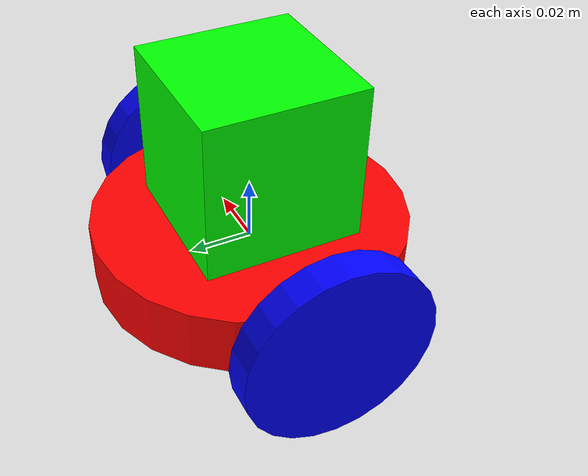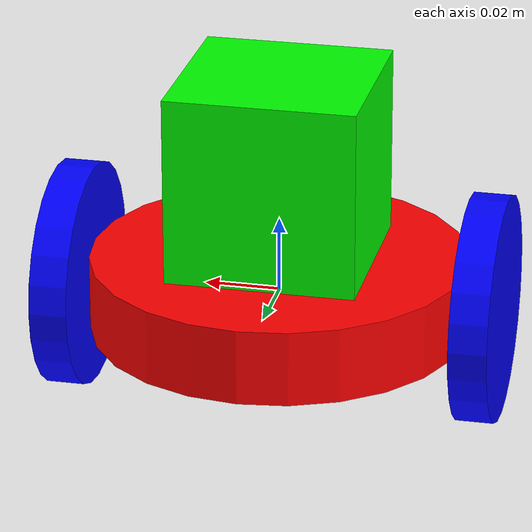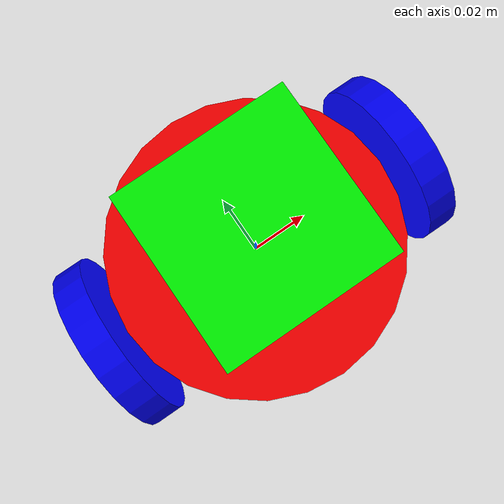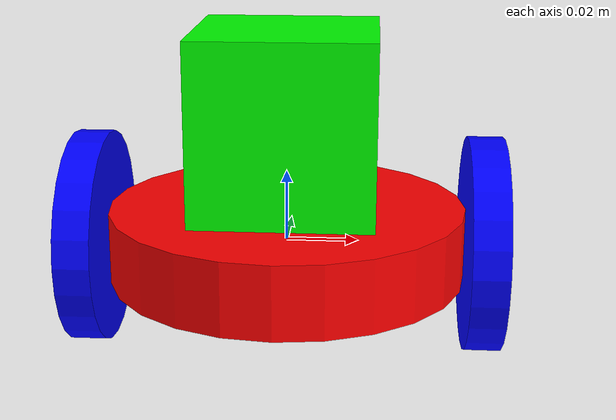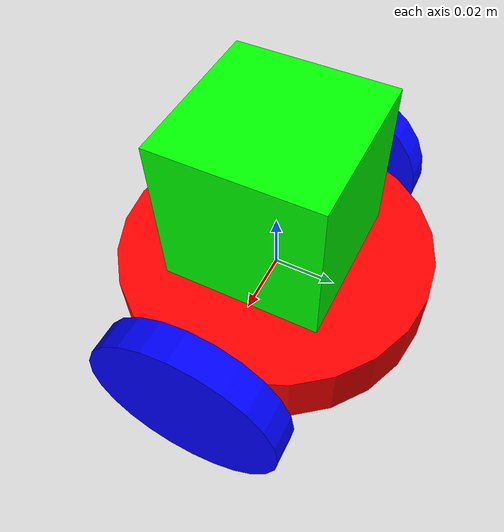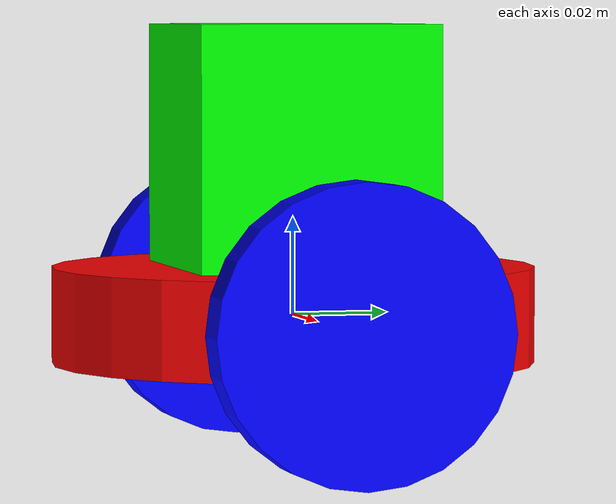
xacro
<?xml version="1.0" ?>

<robot name="mobile_robot" xmlns:xacro="http://ros.org/wiki/xacro">
    <!-- Link to the files that we'll use to build our robot  -->
    <xacro:include filename="$(find robot_support)/urdf/head.xacro" />
    <xacro:include filename="$(find robot_support)/urdf/wheel.xacro" />
    <xacro:include filename="$(find robot_support)/urdf/base.xacro" />

    <!-- Create the base of the robot -->
    <!-- Note: The name called after xacro (robot_base) is the name defined in line 3 of the part xacro file -->
    <xacro:robot_base prefix=""/>

    <!-- Create the head of the robot -->
    <xacro:robot_head prefix=""/>

    <!-- Create a left and right wheel -->
    <!-- To create wheels with different names, we will supply a prefix to the wheel argument -->
    <xacro:robot_wheel prefix="left"/>
    <xacro:robot_wheel prefix="right"/>

    <!-- Attach the created links using joints -->
    <!-- Attach head_link to base_link -->
    <joint name="head_joint" type="fixed">
        <origin xyz="0.0 0.0 0.035" rpy="0.0 0.0 0.0"/>
        <parent link="base_link"/>
        <child link="head_link"/>
    </joint>

    <!-- Attach wheels to base_link -->
    <joint name="left_wheel_joint" type="revolute">
        <axis xyz="0 0 1"/>
        <limit effort="100.0" lower="-3.14" upper="3.14" velocity="0.1"/>
        <origin xyz="0.055 0.0 0.0" rpy="0.0 1.5708 0.0"/>
        <parent link="base_link"/>
        <child link="left_wheel_link"/>
    </joint>

    <joint name="right_wheel_joint" type="revolute">
        <axis xyz="0 0 1"/>
        <limit effort="100.0" lower="-3.14" upper="3.14" velocity="0.1"/>
        <origin xyz="-0.055 0.0 0.0" rpy="0.0 1.5708 0.0"/>
        <parent link="base_link"/>
        <child link="right_wheel_link"/>
    </joint>

</robot>

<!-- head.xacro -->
<robot xmlns:xacro="http://ros.org/wiki/xacro">
<xacro:macro name="robot_head" params="prefix">

    <!-- Robot Head -->
    <link name="${prefix}head_link">
        <visual>
            <origin xyz="0 0 0" rpy="0 0 0" />
            <geometry>
                <box size="0.05 0.05 0.05"/>
            </geometry>
            <material name="green">
                <color rgba="0.0 1.0 0.0 1.0"/>
            </material>
        </visual>
        <collision>
            <origin xyz="0 0 0" rpy="0 0 0" />
            <geometry>
                <box size="0.05 0.05 0.05"/>
            </geometry>
        </collision>
    </link>

</xacro:macro>
</robot>

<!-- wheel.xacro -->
<robot xmlns:xacro="http://ros.org/wiki/xacro">
<xacro:macro name="robot_wheel" params="prefix">

    <!-- Robot Wheel -->
    <link name="${prefix}_wheel_link">
        <visual>
            <origin xyz="0 0 0" rpy="0 0 0" />
            <geometry>
                <cylinder radius="0.03" length="0.01"/>
            </geometry>
            <material name="blue">
                <color rgba="0.0 0.0 1.0 1.0"/>
            </material>
        </visual>
        <collision>
            <origin xyz="0 0 0" rpy="0 0 0" />
            <geometry>
                <cylinder radius="0.02" length="0.01"/>
            </geometry>
        </collision>
    </link>

</xacro:macro>
</robot>

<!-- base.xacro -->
<robot xmlns:xacro="http://ros.org/wiki/xacro">
<xacro:macro name="robot_base" params="prefix">

    <!-- Robot Base -->
    <link name="${prefix}base_link">
        <visual>
            <origin xyz="0 0 0" rpy="0 0 0" />
            <geometry>
                <cylinder radius="0.05" length="0.02"/>
            </geometry>
            <material name="red">
                <color rgba="1.0 0.0 0.0 1.0"/>
            </material>
        </visual>
        <collision>
            <origin xyz="0 0 0" rpy="0 0 0" />
            <geometry>
                <cylinder radius="0.05" length="0.02"/>
            </geometry>
        </collision>
    </link>

</xacro:macro>
</robot>
